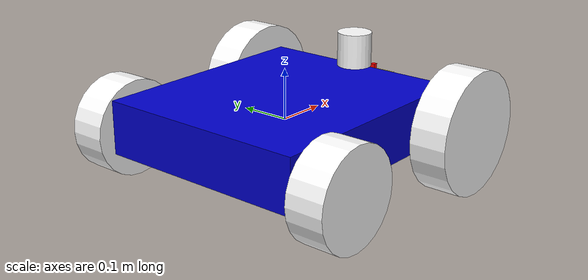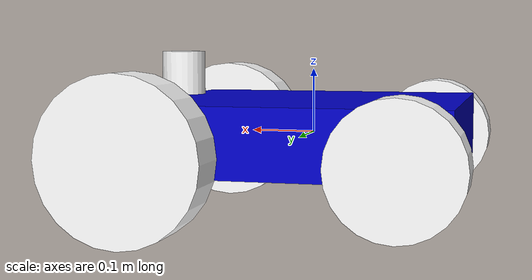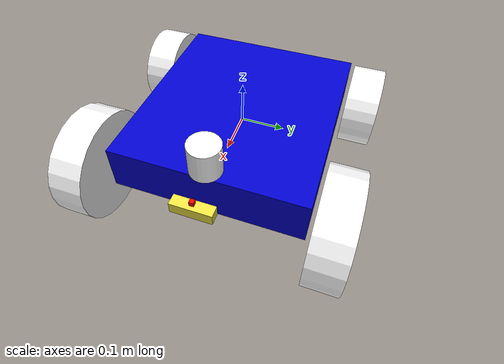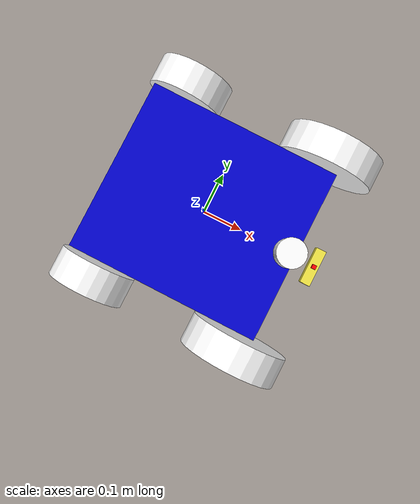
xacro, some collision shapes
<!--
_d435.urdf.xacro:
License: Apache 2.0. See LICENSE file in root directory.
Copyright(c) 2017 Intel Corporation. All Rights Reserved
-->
<?xml version="1.0"?>
<robot name="tgv" xmlns:xacro="http://ros.org/wiki/xacro">

  <xacro:include filename="$(find tgv_urdf)/urdf/_d435.urdf.xacro" />
  <xacro:include filename="$(find tgv_urdf)/urdf/tgv_body.urdf.xacro" />

  <xacro:tgv_body >
  </xacro:tgv_body>

  <xacro:sensor_d435 parent="realsense_base_link">
    <origin xyz="0 0 0" rpy="0 0 0"/>
  </xacro:sensor_d435>

  <link name="thermal_frame">
    <visual>
      <geometry>
        <box size="0.01 0.01 0.01"/>
      </geometry>
      <origin rpy="0 0 0" xyz="0 0 0"/>
      <material name="red"/>
    </visual>
    <collision>
      <geometry>
        <box size="0.01 0.01 0.01"/>
      </geometry>
    </collision>
    <inertial>
      <mass value="0.010"/>
      <inertia ixx="0.0001" ixy="0.0" ixz="0.0" iyy="0.000016" iyz="0.0" izz="0.0001"/>
    </inertial>
  </link>
  <link name="thermal_optical_frame"/>

  <joint name="realsense_to_thermal" type="fixed">
    <parent link="realsense_base_link"/>
    <child link="thermal_frame"/>
    <origin xyz="0 0 0.033"/>
  </joint>

  <joint name="thermal_to_thermal_optical_joint" type="fixed">
    <parent link="thermal_frame"/>
    <child link="thermal_optical_frame"/>
    <origin xyz="0 0 0" rpy="-1.57 0 -1.57"/>
  </joint>

</robot>

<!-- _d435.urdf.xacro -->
<robot name="sensor_d435" xmlns:xacro="http://ros.org/wiki/xacro">
  <!-- Includes -->
  <xacro:include filename="$(find ogv_urdf)/urdf/_materials.urdf.xacro" />

  <xacro:macro name="sensor_d435" params="parent *origin name:=camera">
    <xacro:property name="M_PI" value="3.1415926535897931" />
    <xacro:arg name="use_nominal_extrinsics" default="true"/>

    <!-- The following values are approximate, and the camera node
     publishing TF values with actual calibrated camera extrinsic values -->
    <xacro:property name="d435_cam_depth_to_infra1_offset" value="0.0"/>
    <xacro:property name="d435_cam_depth_to_infra2_offset" value="-0.050"/>
    <xacro:property name="d435_cam_depth_to_color_offset" value="0.015"/>

    <!-- The following values model the aluminum peripherial case for the
  	D435 camera, with the camera joint represented by the actual
  	peripherial camera tripod mount -->
    <xacro:property name="d435_cam_width" value="0.090"/>
    <xacro:property name="d435_cam_height" value="0.025"/>
    <xacro:property name="d435_cam_depth" value="0.02505"/>
    <xacro:property name="d435_cam_mount_from_center_offset" value="0.0149"/>

    <!-- The following offset is relative the the physical D435 camera peripherial
  	camera tripod mount -->
    <xacro:property name="d435_cam_depth_px" value="${d435_cam_mount_from_center_offset}"/>
    <xacro:property name="d435_cam_depth_py" value="0.0175"/>
    <xacro:property name="d435_cam_depth_pz" value="${d435_cam_height/2}"/>

    <!-- camera body, with origin at bottom screw mount -->
    <joint name="${name}_joint" type="fixed">
      <xacro:insert_block name="origin" />
      <parent link="${parent}"/>
      <child link="${name}_bottom_screw_frame" />
    </joint>
    <link name="${name}_bottom_screw_frame"/>

    <joint name="${name}_link_joint" type="fixed">
      <origin xyz="0 ${d435_cam_depth_py} ${d435_cam_depth_pz}" rpy="0 0 0"/>
      <parent link="${name}_bottom_screw_frame"/>
      <child link="${name}_link" />
    </joint>

    <link name="${name}_link">
      <visual>
        <origin xyz="${d435_cam_mount_from_center_offset} ${-d435_cam_depth_py} 0" rpy="${M_PI/2} 0 ${M_PI/2}"/>
        <geometry>
	        <mesh filename="package://ogv_urdf/meshes/d435.dae" />
        </geometry>
      </visual>
      <collision>
        <origin xyz="0 ${-d435_cam_depth_py} 0" rpy="0 0 0"/>
        <geometry>
          <box size="${d435_cam_depth} ${d435_cam_width} ${d435_cam_height}"/>
        </geometry>
      </collision>
      <inertial>
        <!-- The following are not reliable values, and should not be used for modeling -->
        <mass value="0.564" />
        <origin xyz="0 0 0" />
        <inertia ixx="0.003881243" ixy="0.0" ixz="0.0" iyy="0.000498940" iyz="0.0" izz="0.003879257" />
      </inertial>
    </link>

    <!-- Use the nominal extrinsics between camera frames if the calibrated extrinsics aren't being published. e.g. running the device in simulation  -->
    <xacro:if value="$(arg use_nominal_extrinsics)">
      <!-- camera depth joints and links -->
      <joint name="${name}_depth_joint" type="fixed">
        <origin xyz="0 0 0" rpy="0 0 0"/>
        <parent link="${name}_link"/>
        <child link="${name}_depth_frame" />
      </joint>
      <link name="${name}_depth_frame"/>

      <joint name="${name}_depth_optical_joint" type="fixed">
        <origin xyz="0 0 0" rpy="${-M_PI/2} 0 ${-M_PI/2}" />
        <parent link="${name}_depth_frame" />
        <child link="${name}_depth_optical_frame" />
      </joint>
      <link name="${name}_depth_optical_frame"/>

      <!-- camera left IR joints and links -->
      <joint name="${name}_infra1_joint" type="fixed">
        <origin xyz="0 ${d435_cam_depth_to_infra1_offset} 0" rpy="0 0 0" />
        <parent link="${name}_link" />
        <child link="${name}_infra1_frame" />
      </joint>
      <link name="${name}_infra1_frame"/>

      <joint name="${name}_infra1_optical_joint" type="fixed">
        <origin xyz="0 0 0" rpy="${-M_PI/2} 0 ${-M_PI/2}" />
        <parent link="${name}_infra1_frame" />
        <child link="${name}_infra1_optical_frame" />
      </joint>
      <link name="${name}_infra1_optical_frame"/>

      <!-- camera right IR joints and links -->
      <joint name="${name}_infra2_joint" type="fixed">
        <origin xyz="0 ${d435_cam_depth_to_infra2_offset} 0" rpy="0 0 0" />
        <parent link="${name}_link" />
        <child link="${name}_infra2_frame" />
      </joint>
      <link name="${name}_infra2_frame"/>

      <joint name="${name}_infra2_optical_joint" type="fixed">
        <origin xyz="0 0 0" rpy="${-M_PI/2} 0 ${-M_PI/2}" />
        <parent link="${name}_infra2_frame" />
        <child link="${name}_infra2_optical_frame" />
      </joint>
      <link name="${name}_infra2_optical_frame"/>

      <!-- camera color joints and links -->
      <joint name="${name}_color_joint" type="fixed">
        <origin xyz="0 ${d435_cam_depth_to_color_offset} 0" rpy="0 0 0" />
        <parent link="${name}_link" />
        <child link="${name}_color_frame" />
      </joint>
      <link name="${name}_color_frame"/>

      <joint name="${name}_color_optical_joint" type="fixed">
        <origin xyz="0 0 0" rpy="${-M_PI/2} 0 ${-M_PI/2}" />
        <parent link="${name}_color_frame" />
        <child link="${name}_color_optical_frame" />
      </joint>
      <link name="${name}_color_optical_frame"/>
    </xacro:if>
  </xacro:macro>
</robot>

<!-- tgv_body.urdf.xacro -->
<robot name="tgv_body">

<xacro:macro name="tgv_body" xmlns:xacro="http://ros.org/wiki/xacro">

  <material name="blue">
    <color rgba="0 0 0.8 1"/>
  </material>
  <material name="black">
    <color rgba="0 0 0 1"/>
  </material>
  <material name="white">
    <color rgba="1 1 1 1"/>
  </material>
  <material name="red">
    <color rgba="1 0 0 1"/>
  </material>

  <link name="base_link">
  </link>

  <link name="main_frame">
    <visual>
      <geometry>
        <box size="0.48 0.43 0.106"/>
      </geometry>
      <material name="blue"/>
    </visual>
    <inertial>
      <mass value="10"/>
      <inertia ixx="0.4" ixy="0.0" ixz="0.0" iyy="0.4" iyz="0.0" izz="0.2"/>
    </inertial>
  </link>

  <joint name="base_to_main_frame" type="fixed">
    <parent link="base_link"/>
    <child link="main_frame"/>
    <origin xyz="0 0 0"/>
  </joint>

<!-- FRONT WHEELS -->
  <link name="f_r_wheel">
    <visual>
      <geometry>
        <cylinder length="0.075" radius= "0.12349"/>
      </geometry>
      <origin rpy="1.57075 0 0" xyz="0 0 0"/>
      <material name="white"/>
    </visual>
    <inertial>
      <mass value="10"/>
      <inertia ixx="0.4" ixy="0.0" ixz="0.0" iyy="0.4" iyz="0.0" izz="0.2"/>
    </inertial>
  </link>

  <joint name="base_to_f_r_wheel" type="continuous">
    <parent link="base_link"/>
    <child link="f_r_wheel"/>
    <axis xyz="0 1 0"/>
    <origin xyz="0.2135 -0.2625 -0.021"/>
  </joint>

  <link name="f_l_wheel">
    <visual>
      <geometry>
        <cylinder length="0.075" radius= "0.12349"/>
      </geometry>
      <origin rpy="1.57075 0 0" xyz="0 0 0"/>
      <material name="white"/>
    </visual>
    <inertial>
      <mass value="10"/>
      <inertia ixx="0.4" ixy="0.0" ixz="0.0" iyy="0.4" iyz="0.0" izz="0.2"/>
    </inertial>
  </link>

  <joint name="base_to_f_l_wheel" type="continuous">
    <parent link="base_link"/>
    <child link="f_l_wheel"/>
    <axis xyz="0 1 0"/>
    <origin xyz="0.2135 0.2625 -0.021"/>
  </joint>

  <!-- BACK WHEELS  -->
  <link name="b_r_wheel">
    <visual>
      <geometry>
        <cylinder length="0.075" radius= "0.095496"/>
      </geometry>
      <origin rpy="1.57075 0 0" xyz="0 0 0"/>
      <material name="white"/>
    </visual>
    <inertial>
      <mass value="10"/>
      <inertia ixx="0.4" ixy="0.0" ixz="0.0" iyy="0.4" iyz="0.0" izz="0.2"/>
    </inertial>
  </link>

  <joint name="base_to_b_r_wheel" type="continuous">
    <parent link="f_r_wheel"/>
    <child link="b_r_wheel"/>
    <axis xyz="0 1 0"/>
    <origin xyz="-0.385 0 0"/>
  </joint>

  <link name="b_l_wheel">
    <visual>
      <geometry>
        <cylinder length="0.075" radius= "0.095496"/>
      </geometry>
      <origin rpy="1.57075 0 0" xyz="0 0 0"/>
      <material name="white"/>
    </visual>
    <inertial>
      <mass value="10"/>
      <inertia ixx="0.4" ixy="0.0" ixz="0.0" iyy="0.4" iyz="0.0" izz="0.2"/>
    </inertial>
  </link>

  <joint name="base_to_b_l_wheel" type="continuous">
    <parent link="f_l_wheel"/>
    <child link="b_l_wheel"/>
    <axis xyz="0 1 0"/>
    <origin xyz="-0.385 0 0"/>
  </joint>

  <!-- LIDAR  -->
  <link name="base_laser_link">
    <visual>
      <geometry>
        <cylinder length="0.07" radius="0.035"/>
      </geometry>
      <origin rpy="0 0 0" xyz="0 0 -0.027"/>
      <material name="white"/>
    </visual>
    <collision>
      <geometry>
        <cylinder length="0.07" radius="0.035"/>
      </geometry>
    </collision>
    <inertial>
      <mass value="0.22"/>
      <inertia ixx="0.000157" ixy="0.0" ixz="0.0" iyy="0.000157" iyz="0.0" izz="0.000135"/>
    </inertial>
  </link>

  <joint name="base_to_laser" type="continuous">
    <parent link="base_link"/>
    <child link="base_laser_link"/>
    <axis xyz="0 0 1"/>
    <origin xyz="0.22 0 0.1196"/>
  </joint>

  <link name="laser_frame" />

  <joint name="base_laser_rotated" type="fixed">
    <parent link="base_laser_link"/>
    <child link="laser_frame"/>
    <axis xyz="0 0 1"/>
    <origin xyz="0 0 0" rpy="0 0 3.14"/>
  </joint>

  <!-- REALSENSE CAMERA -->

  <link name="realsense_base_link">
  </link>

  <joint name="base_to_realsense" type="fixed">
    <parent link="base_link"/>
    <child link="realsense_base_link"/>
    <axis xyz="0 1 0"/>
    <origin xyz="0.290 0 0.006"/>
  </joint>

  <link name="floor_frame">
  </link>

  <joint name="floor_to_base_link_joint" type="fixed">
    <parent link="base_link"/>
    <child link="floor_frame"/>
    <origin rpy="0 0 0" xyz="0 0 -0.164"/>
  </joint>

  </xacro:macro>
</robot>
